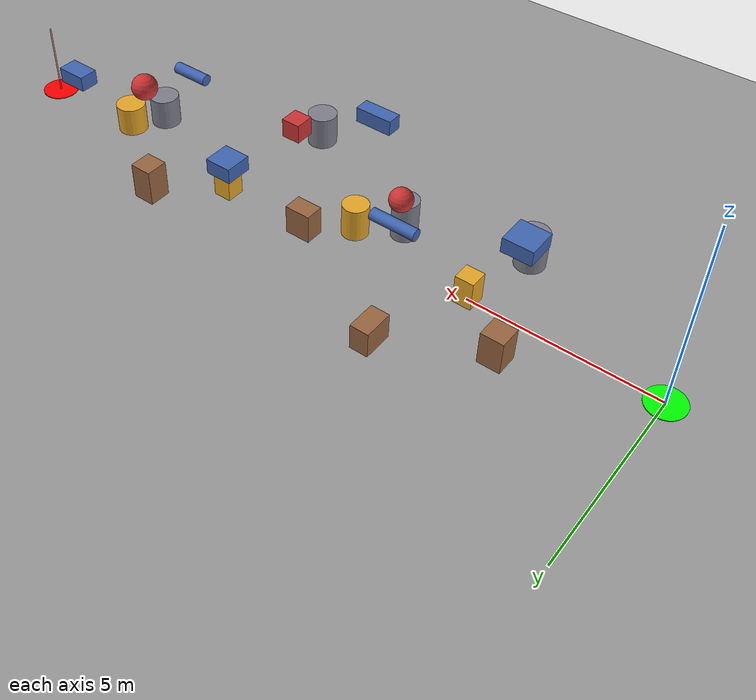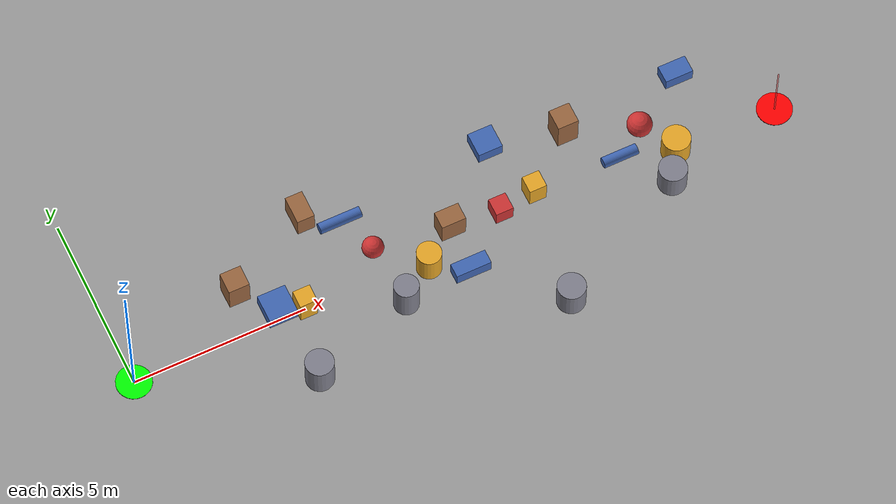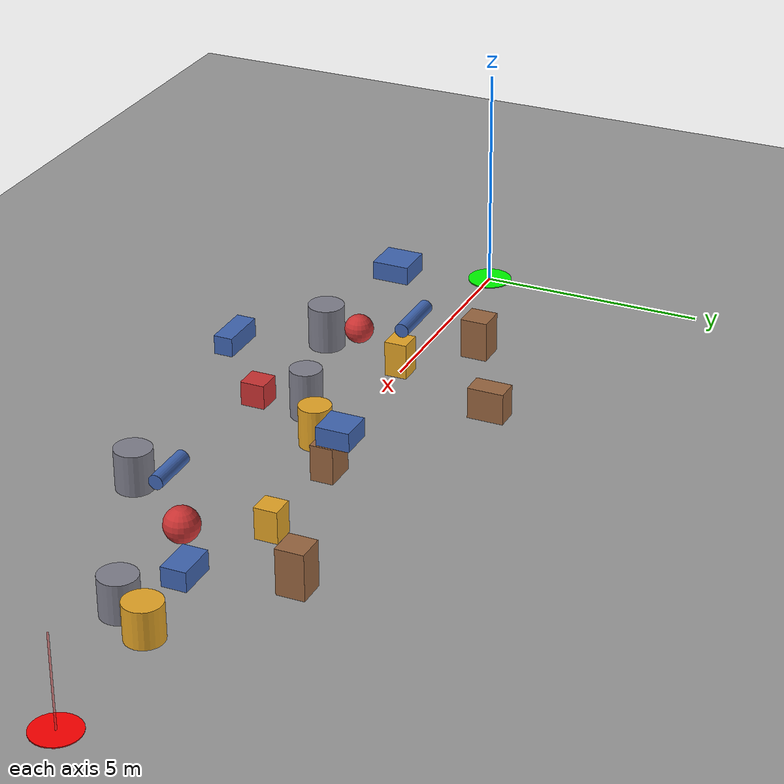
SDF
<?xml version="1.0" ?>
<sdf version="1.9">
  <world name="benchmark_world">

    <!-- ═══════════════════════════════════════════════════════════════
         PHYSICS — unchanged from V4, proven stable on WSL2
         ═══════════════════════════════════════════════════════════════ -->
    <physics name="default_physics" type="ode">
      <max_step_size>0.001</max_step_size>
      <real_time_factor>1</real_time_factor>
      <real_time_update_rate>1000</real_time_update_rate>
    </physics>

    <!-- ═══════════════════════════════════════════════════════════════
         PLUGINS
         ═══════════════════════════════════════════════════════════════ -->
    <plugin filename="gz-sim-physics-system"
            name="gz::sim::systems::Physics"/>
    <plugin filename="gz-sim-user-commands-system"
            name="gz::sim::systems::UserCommands"/>
    <plugin filename="gz-sim-scene-broadcaster-system"
            name="gz::sim::systems::SceneBroadcaster"/>
    <plugin filename="gz-sim-sensors-system"
            name="gz::sim::systems::Sensors">
      <render_engine>ogre2</render_engine>
    </plugin>
    <plugin filename="gz-sim-imu-system"
            name="gz::sim::systems::Imu"/>

    <!-- ═══════════════════════════════════════════════════════════════
         LIGHTING
         ═══════════════════════════════════════════════════════════════ -->
    <light type="directional" name="sun">
      <cast_shadows>true</cast_shadows>
      <pose>0 0 10 0 0 0</pose>
      <diffuse>0.9 0.9 0.9 1</diffuse>
      <specular>0.3 0.3 0.3 1</specular>
      <direction>-0.5 0.1 -0.9</direction>
    </light>

    <model name="ground_plane">
      <static>true</static>
      <link name="link">
        <collision name="collision">
          <geometry><plane><normal>0 0 1</normal><size>22 10</size></plane></geometry>
        </collision>
        <visual name="visual">
          <geometry><plane><normal>0 0 1</normal><size>22 10</size></plane></geometry>
          <material>
            <ambient>0.6 0.6 0.6 1</ambient>
            <diffuse>0.6 0.6 0.6 1</diffuse>
          </material>
        </visual>
      </link>
    </model>

    <model name="start_marker">
      <static>true</static>
      <pose>0 0 0.01 0 0 0</pose>
      <link name="link">
        <visual name="visual">
          <geometry><cylinder><radius>0.5</radius><length>0.02</length></cylinder></geometry>
          <material>
            <ambient>0 0.8 0 1</ambient>
            <diffuse>0 1 0 1</diffuse>
            <emissive>0 0.5 0 1</emissive>
          </material>
        </visual>
      </link>
    </model>

    <model name="goal_marker">
      <static>true</static>
      <pose>19 0 0.01 0 0 0</pose>
      <link name="link">
        <visual name="visual">
          <geometry><cylinder><radius>0.5</radius><length>0.02</length></cylinder></geometry>
          <material>
            <ambient>0.9 0 0 1</ambient>
            <diffuse>1 0 0 1</diffuse>
            <emissive>0.5 0 0 1</emissive>
          </material>
        </visual>
      </link>
    </model>

    <!-- Goal altitude marker — a thin vertical pole at the goal XY so the
         drone (and a human watching) can see the target height (z=2.0),
         not just the ground footprint. Visual only. -->
    <model name="goal_altitude_marker">
      <static>true</static>
      <pose>19 0 1.0 0 0 0</pose>
      <link name="link">
        <visual name="visual">
          <geometry><cylinder><radius>0.02</radius><length>2.0</length></cylinder></geometry>
          <material>
            <ambient>1 0.3 0.3 0.5</ambient>
            <diffuse>1 0.3 0.3 0.5</diffuse>
          </material>
        </visual>
      </link>
    </model>

    <!-- ─────────────── STATIC GROUND OBSTACLES (8) ─────────────── -->

    <model name="static_ground_1">
      <static>true</static>
      <pose>3.5 1.2 0.45 0 0 0</pose>
      <link name="link">
        <collision name="collision">
          <geometry><box><size>0.6 0.6 0.9</size></box></geometry>
        </collision>
        <visual name="visual">
          <geometry><box><size>0.6 0.6 0.9</size></box></geometry>
          <material><ambient>0.5 0.35 0.2 1</ambient><diffuse>0.6 0.4 0.25 1</diffuse></material>
        </visual>
      </link>
    </model>

    <model name="static_ground_2">
      <static>true</static>
      <pose>4.5 -2.0 0.5 0 0 0</pose>
      <link name="link">
        <collision name="collision">
          <geometry><cylinder><radius>0.4</radius><length>1.0</length></cylinder></geometry>
        </collision>
        <visual name="visual">
          <geometry><cylinder><radius>0.4</radius><length>1.0</length></cylinder></geometry>
          <material><ambient>0.4 0.4 0.45 1</ambient><diffuse>0.5 0.5 0.55 1</diffuse></material>
        </visual>
      </link>
    </model>

    <model name="static_ground_3">
      <static>true</static>
      <pose>6.0 2.5 0.35 0 0 0</pose>
      <link name="link">
        <collision name="collision">
          <geometry><box><size>0.5 0.8 0.7</size></box></geometry>
        </collision>
        <visual name="visual">
          <geometry><box><size>0.5 0.8 0.7</size></box></geometry>
          <material><ambient>0.5 0.35 0.2 1</ambient><diffuse>0.6 0.4 0.25 1</diffuse></material>
        </visual>
      </link>
    </model>

    <model name="static_ground_4">
      <static>true</static>
      <pose>7.5 -1.0 0.55 0 0 0</pose>
      <link name="link">
        <collision name="collision">
          <geometry><cylinder><radius>0.35</radius><length>1.1</length></cylinder></geometry>
        </collision>
        <visual name="visual">
          <geometry><cylinder><radius>0.35</radius><length>1.1</length></cylinder></geometry>
          <material><ambient>0.4 0.4 0.45 1</ambient><diffuse>0.5 0.5 0.55 1</diffuse></material>
        </visual>
      </link>
    </model>

    <model name="static_ground_5">
      <static>true</static>
      <pose>9.5 0.5 0.4 0 0 0</pose>
      <link name="link">
        <collision name="collision">
          <geometry><box><size>0.7 0.5 0.8</size></box></geometry>
        </collision>
        <visual name="visual">
          <geometry><box><size>0.7 0.5 0.8</size></box></geometry>
          <material><ambient>0.5 0.35 0.2 1</ambient><diffuse>0.6 0.4 0.25 1</diffuse></material>
        </visual>
      </link>
    </model>

    <model name="static_ground_6">
      <static>true</static>
      <pose>11.5 -2.8 0.45 0 0 0</pose>
      <link name="link">
        <collision name="collision">
          <geometry><cylinder><radius>0.4</radius><length>0.9</length></cylinder></geometry>
        </collision>
        <visual name="visual">
          <geometry><cylinder><radius>0.4</radius><length>0.9</length></cylinder></geometry>
          <material><ambient>0.4 0.4 0.45 1</ambient><diffuse>0.5 0.5 0.55 1</diffuse></material>
        </visual>
      </link>
    </model>

    <model name="static_ground_7">
      <static>true</static>
      <pose>13.5 1.8 0.5 0 0 0</pose>
      <link name="link">
        <collision name="collision">
          <geometry><box><size>0.6 0.6 1.0</size></box></geometry>
        </collision>
        <visual name="visual">
          <geometry><box><size>0.6 0.6 1.0</size></box></geometry>
          <material><ambient>0.5 0.35 0.2 1</ambient><diffuse>0.6 0.4 0.25 1</diffuse></material>
        </visual>
      </link>
    </model>

    <model name="static_ground_8">
      <static>true</static>
      <pose>15.5 -0.8 0.425 0 0 0</pose>
      <link name="link">
        <collision name="collision">
          <geometry><cylinder><radius>0.4</radius><length>0.85</length></cylinder></geometry>
        </collision>
        <visual name="visual">
          <geometry><cylinder><radius>0.4</radius><length>0.85</length></cylinder></geometry>
          <material><ambient>0.4 0.4 0.45 1</ambient><diffuse>0.5 0.5 0.55 1</diffuse></material>
        </visual>
      </link>
    </model>

    <model name="dynamic_ground_1">
      <pose>5.0 0.0 0.4 0 0 0</pose>
      <link name="link">
        <kinematic>true</kinematic>
        <gravity>false</gravity>
        <collision name="collision">
          <geometry><box><size>0.5 0.5 0.8</size></box></geometry>
        </collision>
        <visual name="visual">
          <geometry><box><size>0.5 0.5 0.8</size></box></geometry>
          <material><ambient>0.75 0.55 0.1 1</ambient><diffuse>0.9 0.65 0.15 1</diffuse></material>
        </visual>
      </link>
    </model>

    <model name="dynamic_ground_2">
      <pose>8.5 -0.3 0.45 0 0 0</pose>
      <link name="link">
        <kinematic>true</kinematic>
        <gravity>false</gravity>
        <collision name="collision">
          <geometry><cylinder><radius>0.35</radius><length>0.9</length></cylinder></geometry>
        </collision>
        <visual name="visual">
          <geometry><cylinder><radius>0.35</radius><length>0.9</length></cylinder></geometry>
          <material><ambient>0.75 0.55 0.1 1</ambient><diffuse>0.9 0.65 0.15 1</diffuse></material>
        </visual>
      </link>
    </model>

    <model name="dynamic_ground_3">
      <pose>12.0 0.5 0.35 0 0 0</pose>
      <link name="link">
        <kinematic>true</kinematic>
        <gravity>false</gravity>
        <collision name="collision">
          <geometry><box><size>0.5 0.5 0.7</size></box></geometry>
        </collision>
        <visual name="visual">
          <geometry><box><size>0.5 0.5 0.7</size></box></geometry>
          <material><ambient>0.75 0.55 0.1 1</ambient><diffuse>0.9 0.65 0.15 1</diffuse></material>
        </visual>
      </link>
    </model>

    <model name="dynamic_ground_4">
      <pose>16.0 0.0 0.4 0 0 0</pose>
      <link name="link">
        <kinematic>true</kinematic>
        <gravity>false</gravity>
        <collision name="collision">
          <geometry><cylinder><radius>0.4</radius><length>0.8</length></cylinder></geometry>
        </collision>
        <visual name="visual">
          <geometry><cylinder><radius>0.4</radius><length>0.8</length></cylinder></geometry>
          <material><ambient>0.75 0.55 0.1 1</ambient><diffuse>0.9 0.65 0.15 1</diffuse></material>
        </visual>
      </link>
    </model>

    <model name="static_elevated_1">
      <static>true</static>
      <pose>4.0 -0.5 2.0 0 0 0</pose>
      <link name="link">
        <collision name="collision">
          <geometry><box><size>0.8 0.8 0.4</size></box></geometry>
        </collision>
        <visual name="visual">
          <geometry><box><size>0.8 0.8 0.4</size></box></geometry>
          <material><ambient>0.2 0.3 0.55 1</ambient><diffuse>0.25 0.4 0.7 1</diffuse></material>
        </visual>
      </link>
    </model>

    <model name="static_elevated_2">
      <static>true</static>
      <pose>6.5 1.0 2.2 0 1.5708 0</pose>
      <link name="link">
        <collision name="collision">
          <geometry><cylinder><radius>0.15</radius><length>1.2</length></cylinder></geometry>
        </collision>
        <visual name="visual">
          <geometry><cylinder><radius>0.15</radius><length>1.2</length></cylinder></geometry>
          <material><ambient>0.2 0.3 0.55 1</ambient><diffuse>0.25 0.4 0.7 1</diffuse></material>
        </visual>
      </link>
    </model>

    <model name="static_elevated_3">
      <static>true</static>
      <pose>9.0 -1.8 2.4 0 0 0</pose>
      <link name="link">
        <collision name="collision">
          <geometry><box><size>1.0 0.4 0.4</size></box></geometry>
        </collision>
        <visual name="visual">
          <geometry><box><size>1.0 0.4 0.4</size></box></geometry>
          <material><ambient>0.2 0.3 0.55 1</ambient><diffuse>0.25 0.4 0.7 1</diffuse></material>
        </visual>
      </link>
    </model>

    <model name="static_elevated_4">
      <static>true</static>
      <pose>11.0 1.5 2.0 0 0 0</pose>
      <link name="link">
        <collision name="collision">
          <geometry><box><size>0.7 0.7 0.4</size></box></geometry>
        </collision>
        <visual name="visual">
          <geometry><box><size>0.7 0.7 0.4</size></box></geometry>
          <material><ambient>0.2 0.3 0.55 1</ambient><diffuse>0.25 0.4 0.7 1</diffuse></material>
        </visual>
      </link>
    </model>

    <model name="static_elevated_5">
      <static>true</static>
      <pose>14.0 -0.5 2.3 0 1.5708 0</pose>
      <link name="link">
        <collision name="collision">
          <geometry><cylinder><radius>0.15</radius><length>1.0</length></cylinder></geometry>
        </collision>
        <visual name="visual">
          <geometry><cylinder><radius>0.15</radius><length>1.0</length></cylinder></geometry>
          <material><ambient>0.2 0.3 0.55 1</ambient><diffuse>0.25 0.4 0.7 1</diffuse></material>
        </visual>
      </link>
    </model>

    <model name="static_elevated_6">
      <static>true</static>
      <pose>16.5 1.2 2.1 0 0 0</pose>
      <link name="link">
        <collision name="collision">
          <geometry><box><size>0.8 0.5 0.4</size></box></geometry>
        </collision>
        <visual name="visual">
          <geometry><box><size>0.8 0.5 0.4</size></box></geometry>
          <material><ambient>0.2 0.3 0.55 1</ambient><diffuse>0.25 0.4 0.7 1</diffuse></material>
        </visual>
      </link>
    </model>

    <model name="dynamic_elevated_1">
      <pose>7.0 0.0 2.0 0 0 0</pose>
      <link name="link">
        <kinematic>true</kinematic>
        <gravity>false</gravity>
        <collision name="collision">
          <geometry><sphere><radius>0.3</radius></sphere></geometry>
        </collision>
        <visual name="visual">
          <geometry><sphere><radius>0.3</radius></sphere></geometry>
          <material><ambient>0.6 0.15 0.15 1</ambient><diffuse>0.8 0.2 0.2 1</diffuse></material>
        </visual>
      </link>
    </model>

    <model name="dynamic_elevated_2">
      <pose>10.5 -0.5 2.2 0 0 0</pose>
      <link name="link">
        <kinematic>true</kinematic>
        <gravity>false</gravity>
        <collision name="collision">
          <geometry><box><size>0.5 0.5 0.5</size></box></geometry>
        </collision>
        <visual name="visual">
          <geometry><box><size>0.5 0.5 0.5</size></box></geometry>
          <material><ambient>0.6 0.15 0.15 1</ambient><diffuse>0.8 0.2 0.2 1</diffuse></material>
        </visual>
      </link>
    </model>

    <model name="dynamic_elevated_3">
      <pose>15.0 0.3 1.9 0 0 0</pose>
      <link name="link">
        <kinematic>true</kinematic>
        <gravity>false</gravity>
        <collision name="collision">
          <geometry><sphere><radius>0.35</radius></sphere></geometry>
        </collision>
        <visual name="visual">
          <geometry><sphere><radius>0.35</radius></sphere></geometry>
          <material><ambient>0.6 0.15 0.15 1</ambient><diffuse>0.8 0.2 0.2 1</diffuse></material>
        </visual>
      </link>
    </model>

  </world>
</sdf>
